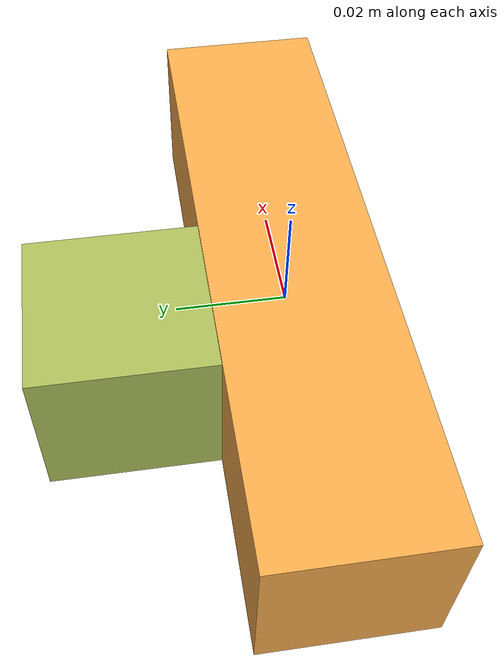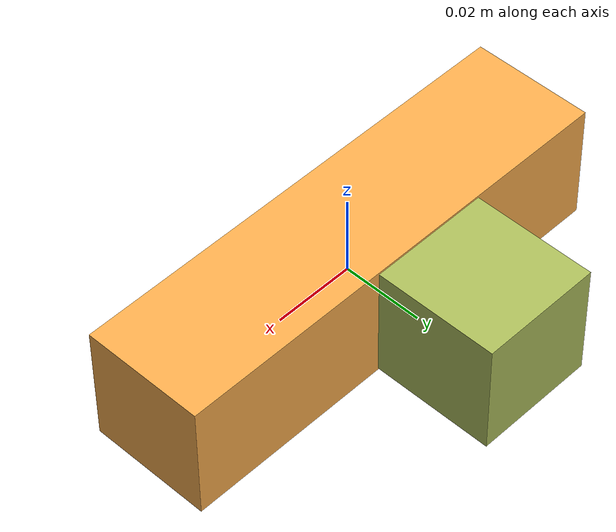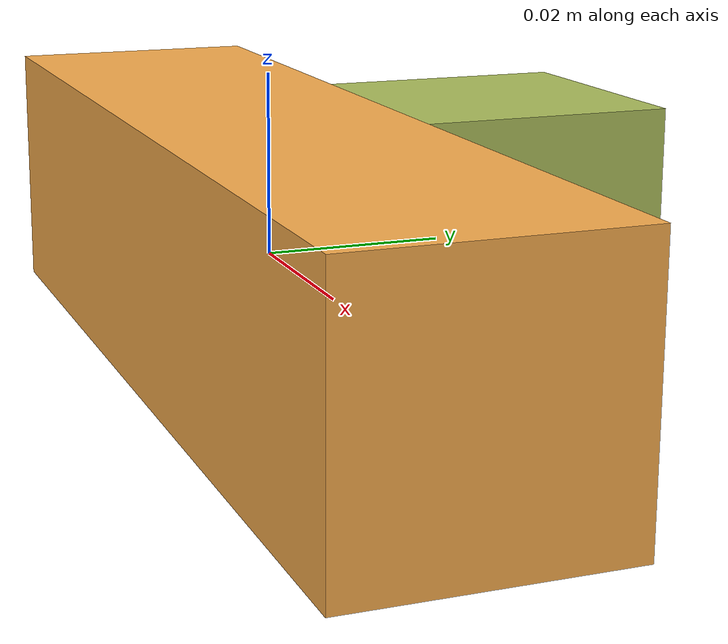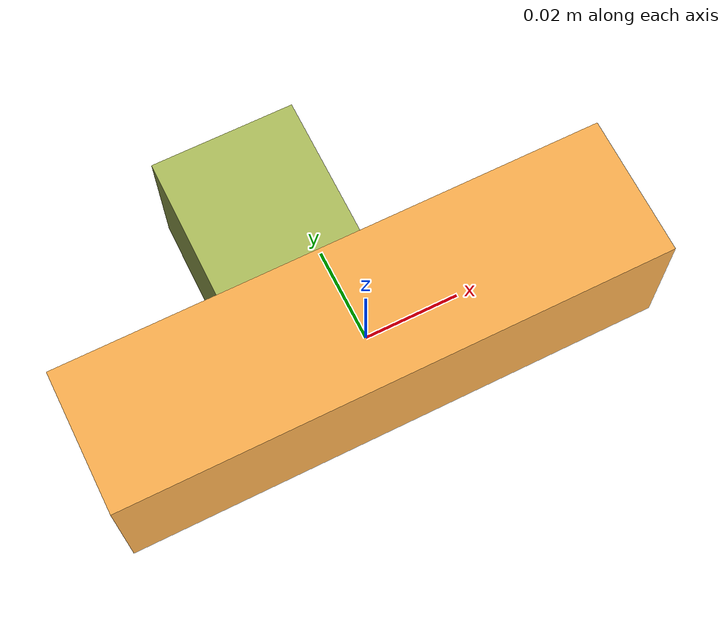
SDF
<sdf version="1.4"><world name="default"><model name="object0"><link name="link1"><pose>0 0 0 0 0 0</pose><inertial><pose>0 0 0 0 0 0</pose><mass>0.0625396915133772</mass><inertia><ixx>9.380953727006578e-06</ixx><ixy>0</ixy><iyy>7.459389918159415e-05</iyy><ixz>0</ixz><iyz>0</iyz><izz>7.459389918159415e-05</izz></inertia></inertial><visual name="link1_visual"><pose>0 0  0 0 0 0</pose><geometry><box><size>0.1158142435432911 0.03 0.03</size></box></geometry><material><diffuse>0.9747839905475171 0.6780265826894917 0.30341426105809616 1</diffuse></material></visual><collision><pose>0 0  0 0 0 0</pose><geometry><box><size>0.1158142435432911 0.03 0.03</size></box></geometry></collision></link><link name="link2"><pose>-0.008653406652107731 0.02031382575928554 0 0 0 0</pose><inertial><pose>0 0 0 0 0 0</pose><mass>0.027110908119263637</mass><inertia><ixx>7.594625511466647e-06</ixx><ixy>0</ixy><iyy>3.9333409196364995e-06</iyy><ixz>0</ixz><iyz>0</iyz><izz>7.727920809719693e-06</izz></inertia></inertial><visual name="link2_visual"><pose>0 0  0 0 0 0</pose><geometry><box><size>0.03 0.05020538540604377 0.028999999999999998</size></box></geometry><material><diffuse>0.6781871760017835 0.7447672703883224 0.3586885570470705 1</diffuse></material></visual><collision><pose>0 0  0 0 0 0</pose><geometry><box><size>0.03 0.05020538540604377 0.028999999999999998</size></box></geometry></collision></link><joint name="link_joint_0" type="fixed"><parent>link1</parent><child>link2</child><pose>0 0 0 0 0 0</pose><axis><xyz>0 0 1</xyz></axis></joint></model></world></sdf>
